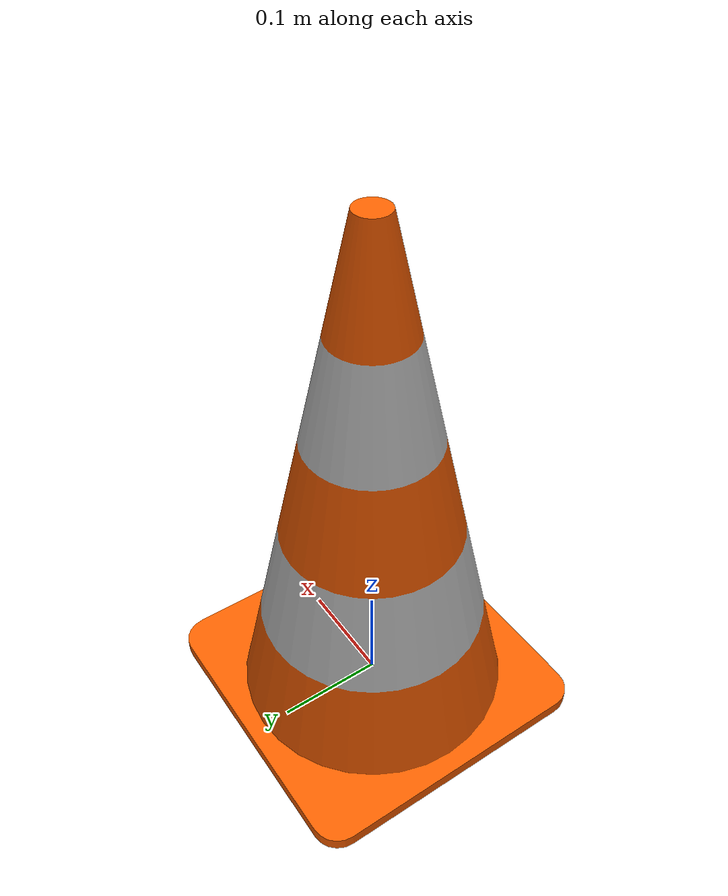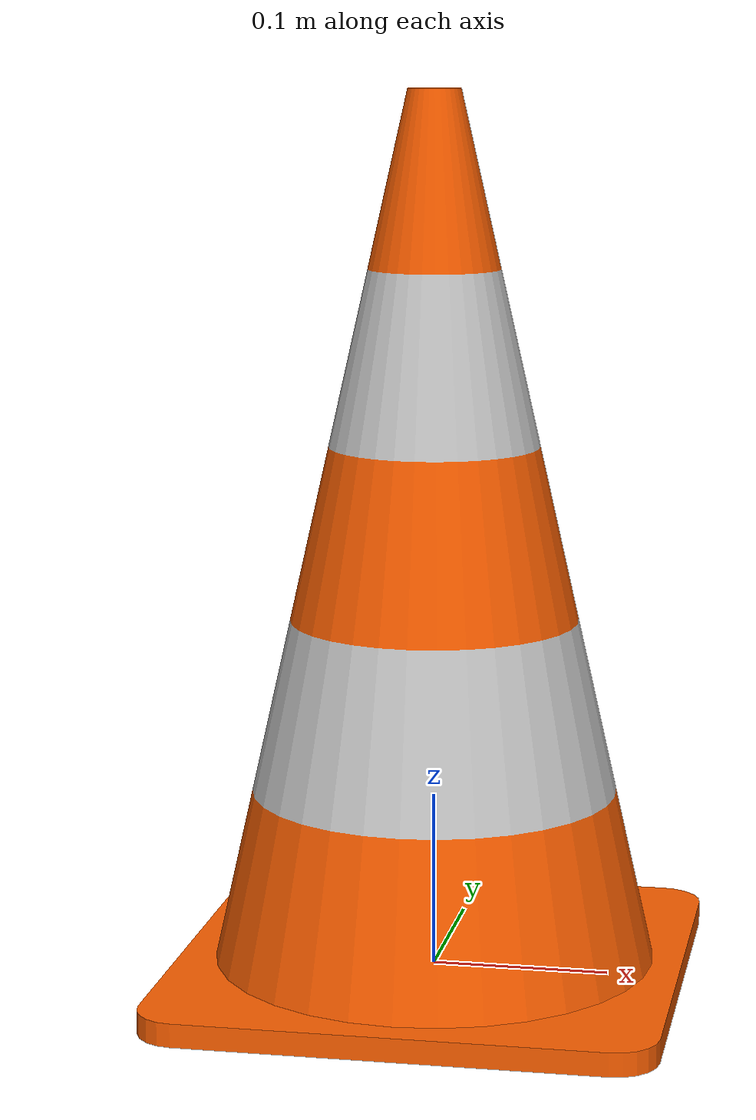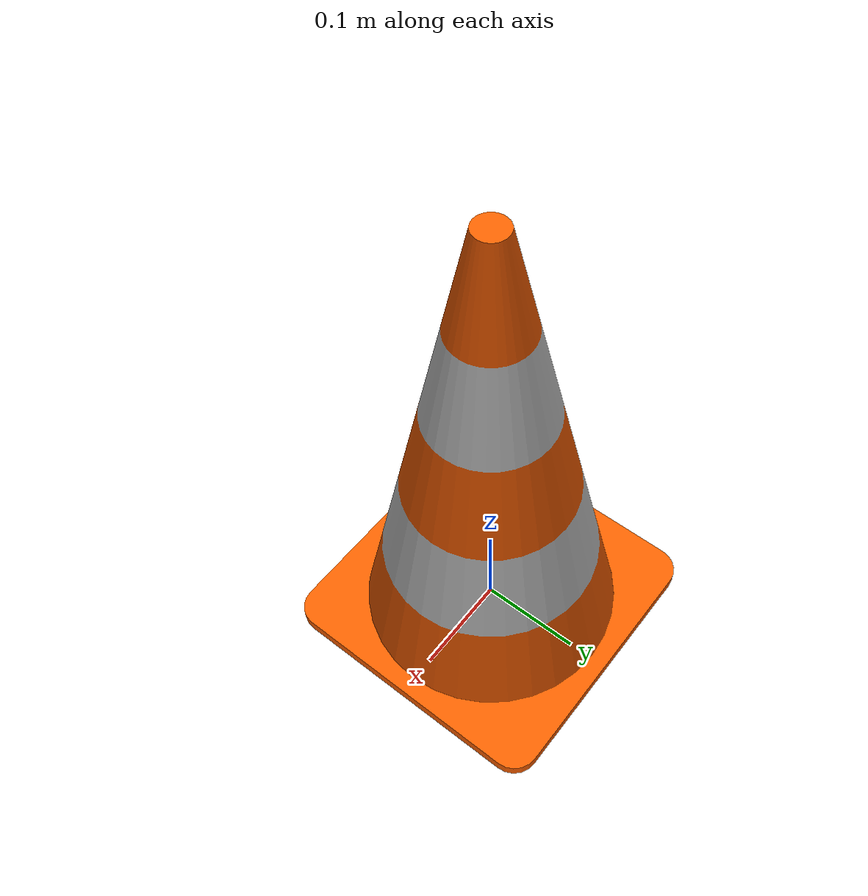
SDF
<?xml version='1.0'?>
<sdf version="1.4">
  <model name="big_orange_cone">
    <pose>0 0 0 0 0 0</pose>
    <static>true</static>
    <link name="link_big_orange_cone">
      <inertial>
        <mass>1.05</mass>
        <inertia>
          <ixx>0.139218516</ixx>
          <ixy>0.0</ixy>
          <ixz>0.0</ixz>
          <iyy>0.139218516</iyy>
          <iyz>0.0</iyz>
          <izz>0.0107</izz>
        </inertia>
      </inertial>
      <collision name="collision_big_orange_cone">
        <geometry>
          <box>
            <size>0.285 0.285 0.505</size>
          </box>
        </geometry>
      </collision>
      <visual name="visual_big_orange_cone">
        <geometry>
          <mesh>
	    <uri>file://../meshes/big_orange_cone.dae</uri>
          </mesh>
        </geometry>
      </visual>
    </link>
  </model>
</sdf>
